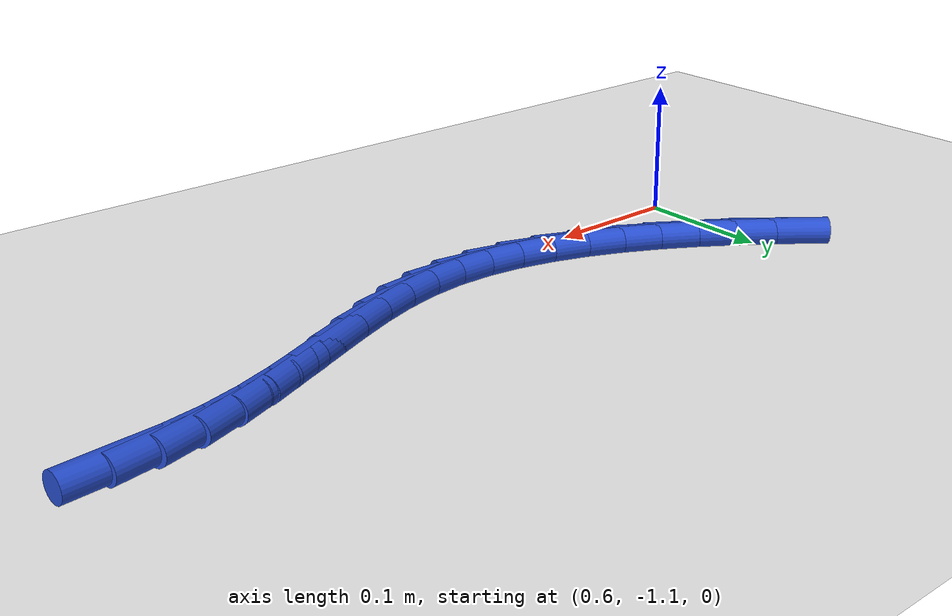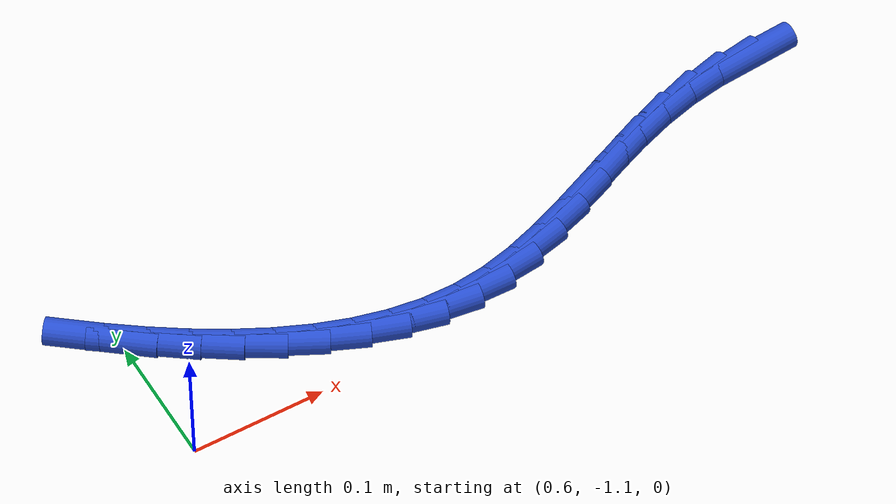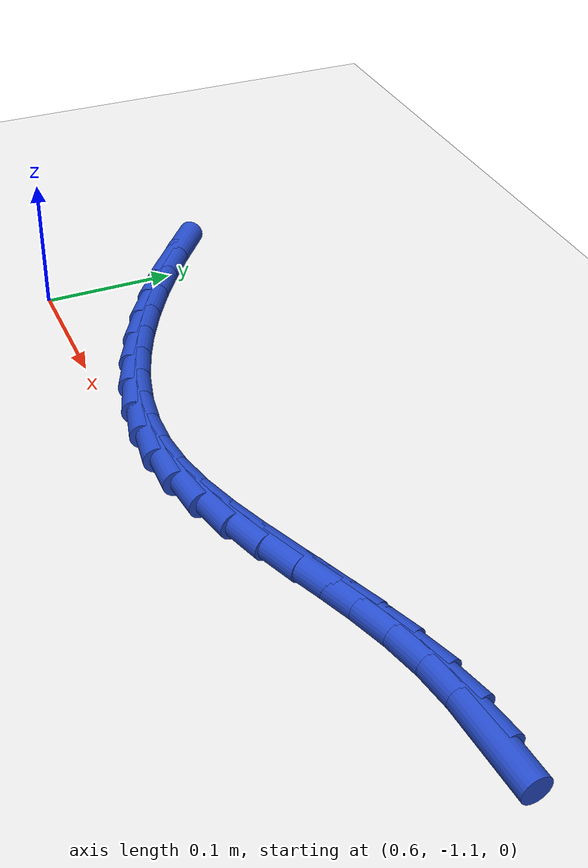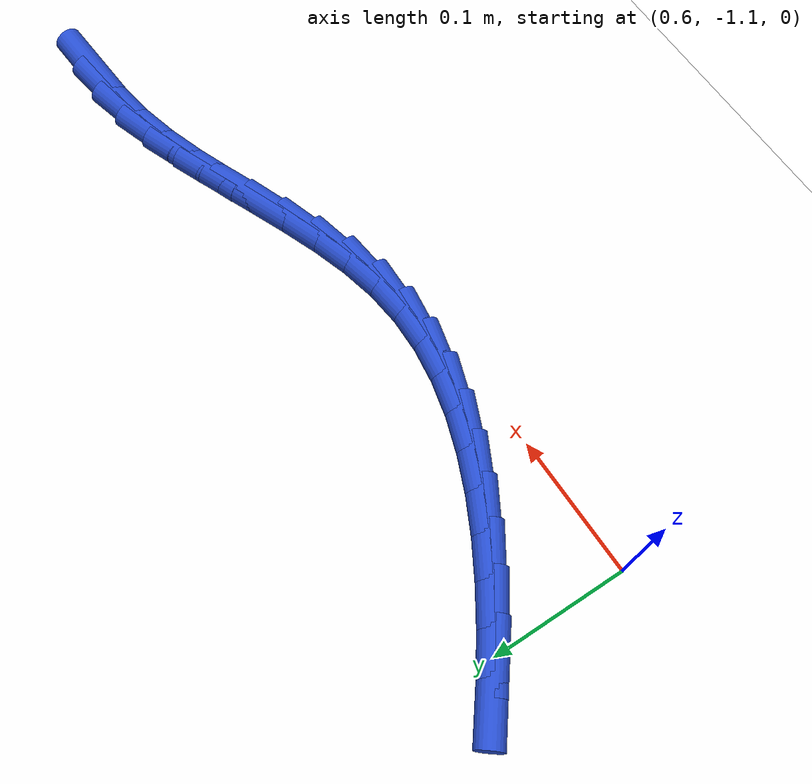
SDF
<sdf version="1.6">
 <world name="default">
  <model name="ground_plane">
   <static>1</static>
   <link name="link">
    <collision name="collision">
     <geometry><plane><normal>0 0 1</normal><size>100 100</size></plane></geometry>
     <surface><friction><ode><mu>100</mu><mu2>50</mu2></ode></friction></surface>
    </collision>
    <visual name="visual">
     <cast_shadows>0</cast_shadows>
     <geometry><plane><normal>0 0 1</normal><size>100 100</size></plane></geometry>
     <material>
      <script><uri>file://media/materials/scripts/gazebo.material</uri><name>Gazebo/WhiteGlow</name></script>
     </material>
    </visual>
   </link>
  </model>
  <model name="line">
   <link name="link_187">
    <pose>1.1070573667217005 -1.0005501790910434 0.01 0 1.57 0.07605318961228272</pose>
    <collision name="collision">
     <geometry><cylinder><radius>0.01</radius><length>0.08</length></cylinder></geometry>
    </collision>
    <visual name="visual">
     <material>
      <script><name>Gazebo/Blue</name><uri>file://media/materials/scripts/gazebo.material</uri></script>
     </material>
     <geometry><cylinder><radius>0.01</radius><length>0.08</length></cylinder></geometry>
    </visual>
   </link>
   <link name="link_188">
    <pose>1.0799037172580086 -1.0026192915908723 0.01 0 1.57 0.16224170303537624</pose>
    <collision name="collision">
     <geometry><cylinder><radius>0.01</radius><length>0.08</length></cylinder></geometry>
    </collision>
    <visual name="visual">
     <material>
      <script><name>Gazebo/Blue</name><uri>file://media/materials/scripts/gazebo.material</uri></script>
     </material>
     <geometry><cylinder><radius>0.01</radius><length>0.08</length></cylinder></geometry>
    </visual>
   </link>
   <link name="link_189">
    <pose>1.0530182977891227 -1.0070199073044364 0.01 0 1.57 0.25885279301988334</pose>
    <collision name="collision">
     <geometry><cylinder><radius>0.01</radius><length>0.08</length></cylinder></geometry>
    </collision>
    <visual name="visual">
     <material>
      <script><name>Gazebo/Blue</name><uri>file://media/materials/scripts/gazebo.material</uri></script>
     </material>
     <geometry><cylinder><radius>0.01</radius><length>0.08</length></cylinder></geometry>
    </visual>
   </link>
   <link name="link_190">
    <pose>1.0264260846845552 -1.0140613531247151 0.01 0 1.57 0.3363390832155254</pose>
    <collision name="collision">
     <geometry><cylinder><radius>0.01</radius><length>0.08</length></cylinder></geometry>
    </collision>
    <visual name="visual">
     <material>
      <script><name>Gazebo/Blue</name><uri>file://media/materials/scripts/gazebo.material</uri></script>
     </material>
     <geometry><cylinder><radius>0.01</radius><length>0.08</length></cylinder></geometry>
    </visual>
   </link>
   <link name="link_191">
    <pose>1.0000923218306146 -1.0232682470459478 0.01 0 1.57 0.3854199992065311</pose>
    <collision name="collision">
     <geometry><cylinder><radius>0.01</radius><length>0.08</length></cylinder></geometry>
    </collision>
    <visual name="visual">
     <material>
      <script><name>Gazebo/Blue</name><uri>file://media/materials/scripts/gazebo.material</uri></script>
     </material>
     <geometry><cylinder><radius>0.01</radius><length>0.08</length></cylinder></geometry>
    </visual>
   </link>
   <link name="link_192">
    <pose>0.973959819288657 -1.0338704926770559 0.01 0 1.57 0.40778324069168115</pose>
    <collision name="collision">
     <geometry><cylinder><radius>0.01</radius><length>0.08</length></cylinder></geometry>
    </collision>
    <visual name="visual">
     <material>
      <script><name>Gazebo/Blue</name><uri>file://media/materials/scripts/gazebo.material</uri></script>
     </material>
     <geometry><cylinder><radius>0.01</radius><length>0.08</length></cylinder></geometry>
    </visual>
   </link>
   <link name="link_193">
    <pose>0.9479713469957456 -1.045097466511924 0.01 0 1.57 0.40425108058153986</pose>
    <collision name="collision">
     <geometry><cylinder><radius>0.01</radius><length>0.08</length></cylinder></geometry>
    </collision>
    <visual name="visual">
     <material>
      <script><name>Gazebo/Blue</name><uri>file://media/materials/scripts/gazebo.material</uri></script>
     </material>
     <geometry><cylinder><radius>0.01</radius><length>0.08</length></cylinder></geometry>
    </visual>
   </link>
   <link name="link_194">
    <pose>0.9220696748889442 -1.056178545044437 0.01 0 1.57 0.37435101608943916</pose>
    <collision name="collision">
     <geometry><cylinder><radius>0.01</radius><length>0.08</length></cylinder></geometry>
    </collision>
    <visual name="visual">
     <material>
      <script><name>Gazebo/Blue</name><uri>file://media/materials/scripts/gazebo.material</uri></script>
     </material>
     <geometry><cylinder><radius>0.01</radius><length>0.08</length></cylinder></geometry>
    </visual>
   </link>
   <link name="link_195">
    <pose>0.8961975729053155 -1.0663431047684793 0.01 0 1.57 0.31632559508090197</pose>
    <collision name="collision">
     <geometry><cylinder><radius>0.01</radius><length>0.08</length></cylinder></geometry>
    </collision>
    <visual name="visual">
     <material>
      <script><name>Gazebo/Blue</name><uri>file://media/materials/scripts/gazebo.material</uri></script>
     </material>
     <geometry><cylinder><radius>0.01</radius><length>0.08</length></cylinder></geometry>
    </visual>
   </link>
   <link name="link_196">
    <pose>0.8702978109819232 -1.074820522177936 0.01 0 1.57 0.22764613430834188</pose>
    <collision name="collision">
     <geometry><cylinder><radius>0.01</radius><length>0.08</length></cylinder></geometry>
    </collision>
    <visual name="visual">
     <material>
      <script><name>Gazebo/Blue</name><uri>file://media/materials/scripts/gazebo.material</uri></script>
     </material>
     <geometry><cylinder><radius>0.01</radius><length>0.08</length></cylinder></geometry>
    </visual>
   </link>
   <link name="link_197">
    <pose>0.8443131590558304 -1.0808401737666917 0.01 0 1.57 0.10739786707640225</pose>
    <collision name="collision">
     <geometry><cylinder><radius>0.01</radius><length>0.08</length></cylinder></geometry>
    </collision>
    <visual name="visual">
     <material>
      <script><name>Gazebo/Blue</name><uri>file://media/materials/scripts/gazebo.material</uri></script>
     </material>
     <geometry><cylinder><radius>0.01</radius><length>0.08</length></cylinder></geometry>
    </visual>
   </link>
   <link name="link_198">
    <pose>0.8181898843634244 -1.083656594568019 0.01 0 1.57 -0.023216374796408343</pose>
    <collision name="collision">
     <geometry><cylinder><radius>0.01</radius><length>0.08</length></cylinder></geometry>
    </collision>
    <visual name="visual">
     <material>
      <script><name>Gazebo/Blue</name><uri>file://media/materials/scripts/gazebo.material</uri></script>
     </material>
     <geometry><cylinder><radius>0.01</radius><length>0.08</length></cylinder></geometry>
    </visual>
   </link>
   <link name="link_199">
    <pose>0.7919469426233693 -1.0830472191084177 0.01 0 1.57 -0.142287804773684</pose>
    <collision name="collision">
     <geometry><cylinder><radius>0.01</radius><length>0.08</length></cylinder></geometry>
    </collision>
    <visual name="visual">
     <material>
      <script><name>Gazebo/Blue</name><uri>file://media/materials/scripts/gazebo.material</uri></script>
     </material>
     <geometry><cylinder><radius>0.01</radius><length>0.08</length></cylinder></geometry>
    </visual>
   </link>
   <link name="link_200">
    <pose>0.7656719169183984 -1.0792831669215646 0.01 0 1.57 -0.24763666879673263</pose>
    <collision name="collision">
     <geometry><cylinder><radius>0.01</radius><length>0.08</length></cylinder></geometry>
    </collision>
    <visual name="visual">
     <material>
      <script><name>Gazebo/Blue</name><uri>file://media/materials/scripts/gazebo.material</uri></script>
     </material>
     <geometry><cylinder><radius>0.01</radius><length>0.08</length></cylinder></geometry>
    </visual>
   </link>
   <link name="link_201">
    <pose>0.7394550745652564 -1.0726548671285705 0.01 0 1.57 -0.33934410299177126</pose>
    <collision name="collision">
     <geometry><cylinder><radius>0.01</radius><length>0.08</length></cylinder></geometry>
    </collision>
    <visual name="visual">
     <material>
      <script><name>Gazebo/Blue</name><uri>file://media/materials/scripts/gazebo.material</uri></script>
     </material>
     <geometry><cylinder><radius>0.01</radius><length>0.08</length></cylinder></geometry>
    </visual>
   </link>
   <link name="link_202">
    <pose>0.7133866828806882 -1.0634527488505479 0.01 0 1.57 -0.4184070606071273</pose>
    <collision name="collision">
     <geometry><cylinder><radius>0.01</radius><length>0.08</length></cylinder></geometry>
    </collision>
    <visual name="visual">
     <material>
      <script><name>Gazebo/Blue</name><uri>file://media/materials/scripts/gazebo.material</uri></script>
     </material>
     <geometry><cylinder><radius>0.01</radius><length>0.08</length></cylinder></geometry>
    </visual>
   </link>
   <link name="link_203">
    <pose>0.6875570091814386 -1.0519672412086076 0.01 0 1.57 -0.4862283063257501</pose>
    <collision name="collision">
     <geometry><cylinder><radius>0.01</radius><length>0.08</length></cylinder></geometry>
    </collision>
    <visual name="visual">
     <material>
      <script><name>Gazebo/Blue</name><uri>file://media/materials/scripts/gazebo.material</uri></script>
     </material>
     <geometry><cylinder><radius>0.01</radius><length>0.08</length></cylinder></geometry>
    </visual>
   </link>
   <link name="link_204">
    <pose>0.6620563207842524 -1.0384887733238612 0.01 0 1.57 -0.5442842778532391</pose>
    <collision name="collision">
     <geometry><cylinder><radius>0.01</radius><length>0.08</length></cylinder></geometry>
    </collision>
    <visual name="visual">
     <material>
      <script><name>Gazebo/Blue</name><uri>file://media/materials/scripts/gazebo.material</uri></script>
     </material>
     <geometry><cylinder><radius>0.01</radius><length>0.08</length></cylinder></geometry>
    </visual>
   </link>
   <link name="link_205">
    <pose>0.6369748850058738 -1.02330777431742 0.01 0 1.57 -0.5939469652101713</pose>
    <collision name="collision">
     <geometry><cylinder><radius>0.01</radius><length>0.08</length></cylinder></geometry>
    </collision>
    <visual name="visual">
     <material>
      <script><name>Gazebo/Blue</name><uri>file://media/materials/scripts/gazebo.material</uri></script>
     </material>
     <geometry><cylinder><radius>0.01</radius><length>0.08</length></cylinder></geometry>
    </visual>
   </link>
   <link name="link_206">
    <pose>0.6124029691630483 -1.0067146733103958 0.01 0 1.57 -0.6364068836771807</pose>
    <collision name="collision">
     <geometry><cylinder><radius>0.01</radius><length>0.08</length></cylinder></geometry>
    </collision>
    <visual name="visual">
     <material>
      <script><name>Gazebo/Blue</name><uri>file://media/materials/scripts/gazebo.material</uri></script>
     </material>
     <geometry><cylinder><radius>0.01</radius><length>0.08</length></cylinder></geometry>
    </visual>
   </link>
   <link name="link_207">
    <pose>0.5884308405725198 -0.9889998994238993 0.01 0 1.57 -0.6726516510521273</pose>
    <collision name="collision">
     <geometry><cylinder><radius>0.01</radius><length>0.08</length></cylinder></geometry>
    </collision>
    <visual name="visual">
     <material>
      <script><name>Gazebo/Blue</name><uri>file://media/materials/scripts/gazebo.material</uri></script>
     </material>
     <geometry><cylinder><radius>0.01</radius><length>0.08</length></cylinder></geometry>
    </visual>
   </link>
  </model>
 </world>
</sdf>
